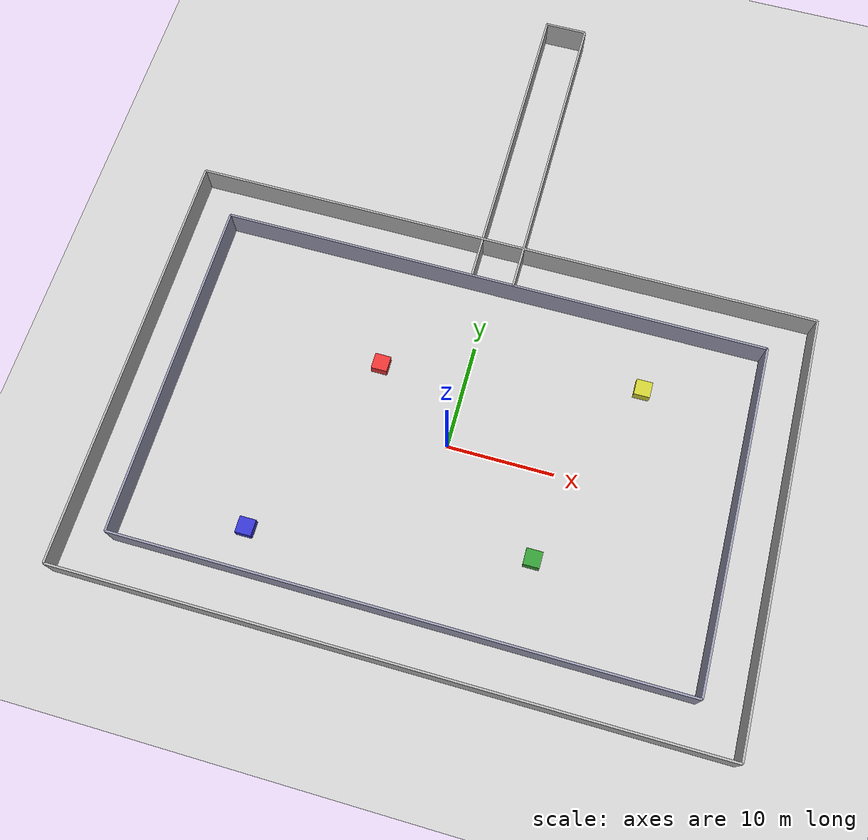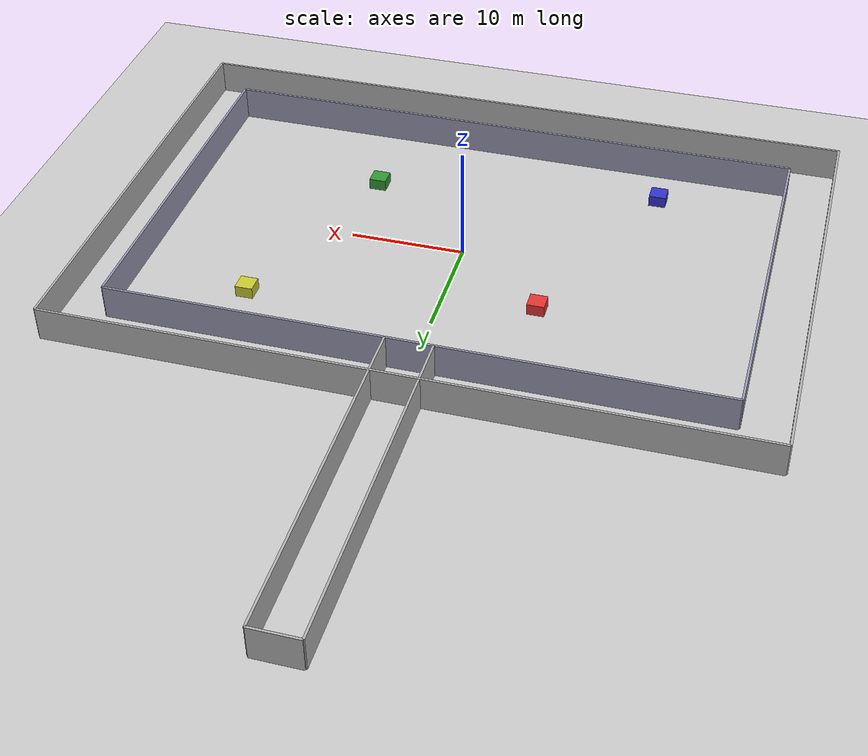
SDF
<sdf version='1.6'>
  <world name='default'>
    <light name='sun' type='directional'>
      <cast_shadows>1</cast_shadows>
      <pose frame=''>0 0 20 0 0 0</pose>
      <diffuse>0.9 0.9 0.9 1</diffuse>
      <specular>0.2 0.2 0.2 1</specular>
      <attenuation><range>200</range></attenuation>
      <direction>-0.5 0.1 -0.9</direction>
    </light>

    <model name='ground_plane'>
      <static>1</static>
      <link name='link'>
        <collision name='collision'>
          <geometry><plane><normal>0 0 1</normal><size>200 200</size></plane></geometry>
          <surface><friction><ode><mu>100</mu><mu2>50</mu2></ode></friction></surface>
        </collision>
        <visual name='visual'>
          <geometry><plane><normal>0 0 1</normal><size>200 200</size></plane></geometry>
          <material><script><uri>file://media/materials/scripts/gazebo.material</uri><name>Gazebo/Grey</name></script></material>
        </visual>
      </link>
    </model>

    <!-- (comment omitted for ASCII compatibility) -->
    <!-- (comment omitted for ASCII compatibility) -->

    <!-- (comment omitted for ASCII compatibility) -->
    <model name='outer_walls'>
      <static>1</static>
      <link name='bottom'><pose>0 -20 0 0 0 0</pose>
        <collision name='c'><pose>0 0 1.5 0 0 0</pose><geometry><box><size>60 0.2 3</size></box></geometry><surface><contact><ode/></contact></surface></collision>
        <visual name='v'><pose>0 0 1.5 0 0 0</pose><geometry><box><size>60 0.2 3</size></box></geometry>
          <material><ambient>0.7 0.7 0.7 1</ambient></material>
        </visual>
      </link>
      <link name='top'><pose>0 20 0 0 0 0</pose>
        <collision name='c'><pose>0 0 1.5 0 0 0</pose><geometry><box><size>60 0.2 3</size></box></geometry><surface><contact><ode/></contact></surface></collision>
        <visual name='v'><pose>0 0 1.5 0 0 0</pose><geometry><box><size>60 0.2 3</size></box></geometry>
          <material><ambient>0.7 0.7 0.7 1</ambient></material>
        </visual>
      </link>
      <link name='left'><pose>-30 0 0 0 0 0</pose>
        <collision name='c'><pose>0 0 1.5 0 0 0</pose><geometry><box><size>0.2 40 3</size></box></geometry><surface><contact><ode/></contact></surface></collision>
        <visual name='v'><pose>0 0 1.5 0 0 0</pose><geometry><box><size>0.2 40 3</size></box></geometry>
          <material><ambient>0.7 0.7 0.7 1</ambient></material>
        </visual>
      </link>
      <link name='right'><pose>30 0 0 0 0 0</pose>
        <collision name='c'><pose>0 0 1.5 0 0 0</pose><geometry><box><size>0.2 40 3</size></box></geometry><surface><contact><ode/></contact></surface></collision>
        <visual name='v'><pose>0 0 1.5 0 0 0</pose><geometry><box><size>0.2 40 3</size></box></geometry>
          <material><ambient>0.7 0.7 0.7 1</ambient></material>
        </visual>
      </link>
    </model>

    <!-- (comment omitted for ASCII compatibility) -->
    <model name='inner_walls'>
      <static>1</static>
      <link name='bottom'><pose>0 -16 0 0 0 0</pose>
        <collision name='c'><pose>0 0 1.5 0 0 0</pose><geometry><box><size>52 0.2 3</size></box></geometry><surface><contact><ode/></contact></surface></collision>
        <visual name='v'><pose>0 0 1.5 0 0 0</pose><geometry><box><size>52 0.2 3</size></box></geometry>
          <material><ambient>0.6 0.6 0.7 1</ambient></material>
        </visual>
      </link>
      <link name='top'><pose>0 16 0 0 0 0</pose>
        <collision name='c'><pose>0 0 1.5 0 0 0</pose><geometry><box><size>52 0.2 3</size></box></geometry><surface><contact><ode/></contact></surface></collision>
        <visual name='v'><pose>0 0 1.5 0 0 0</pose><geometry><box><size>52 0.2 3</size></box></geometry>
          <material><ambient>0.6 0.6 0.7 1</ambient></material>
        </visual>
      </link>
      <link name='left'><pose>-26 0 0 0 0 0</pose>
        <collision name='c'><pose>0 0 1.5 0 0 0</pose><geometry><box><size>0.2 32 3</size></box></geometry><surface><contact><ode/></contact></surface></collision>
        <visual name='v'><pose>0 0 1.5 0 0 0</pose><geometry><box><size>0.2 32 3</size></box></geometry>
          <material><ambient>0.6 0.6 0.7 1</ambient></material>
        </visual>
      </link>
      <link name='right'><pose>26 0 0 0 0 0</pose>
        <collision name='c'><pose>0 0 1.5 0 0 0</pose><geometry><box><size>0.2 32 3</size></box></geometry><surface><contact><ode/></contact></surface></collision>
        <visual name='v'><pose>0 0 1.5 0 0 0</pose><geometry><box><size>0.2 32 3</size></box></geometry>
          <material><ambient>0.6 0.6 0.7 1</ambient></material>
        </visual>
      </link>
    </model>

    <!-- (comment omitted for ASCII compatibility) -->
    <model name='ext_corridor'>
      <static>1</static>
      <link name='left'><pose>-2 31 0 0 0 0</pose>
        <collision name='c'><pose>0 0 1.5 0 0 0</pose><geometry><box><size>0.2 30 3</size></box></geometry><surface><contact><ode/></contact></surface></collision>
        <visual name='v'><pose>0 0 1.5 0 0 0</pose><geometry><box><size>0.2 30 3</size></box></geometry>
          <material><ambient>0.7 0.7 0.7 1</ambient></material>
        </visual>
      </link>
      <link name='right'><pose>2 31 0 0 0 0</pose>
        <collision name='c'><pose>0 0 1.5 0 0 0</pose><geometry><box><size>0.2 30 3</size></box></geometry><surface><contact><ode/></contact></surface></collision>
        <visual name='v'><pose>0 0 1.5 0 0 0</pose><geometry><box><size>0.2 30 3</size></box></geometry>
          <material><ambient>0.7 0.7 0.7 1</ambient></material>
        </visual>
      </link>
    </model>
    <model name='ext_end'><static>1</static>
      <link name='link'><pose>0 46 0 0 0 0</pose>
        <collision name='c'><pose>0 0 1.5 0 0 0</pose><geometry><box><size>4 0.2 3</size></box></geometry><surface><contact><ode/></contact></surface></collision>
        <visual name='v'><pose>0 0 1.5 0 0 0</pose><geometry><box><size>4 0.2 3</size></box></geometry>
          <material><ambient>0.7 0.7 0.7 1</ambient></material>
        </visual>
      </link>
    </model>

    <!-- (comment omitted for ASCII compatibility) -->
    <model name='block_1'><static>1</static>
      <pose>-8 6 0 0 0 0</pose>
      <link name='l'><pose>0 0 0.5 0 0 0</pose>
        <visual name='v'><geometry><box><size>1.5 1.5 1</size></box></geometry>
          <material><ambient>0.9 0.2 0.2 1</ambient></material>
        </visual>
      </link>
    </model>
    <model name='block_2'><static>1</static>
      <pose>10 -8 0 0 0 0</pose>
      <link name='l'><pose>0 0 0.5 0 0 0</pose>
        <visual name='v'><geometry><box><size>1.5 1.5 1</size></box></geometry>
          <material><ambient>0.2 0.6 0.2 1</ambient></material>
        </visual>
      </link>
    </model>
    <model name='block_3'><static>1</static>
      <pose>-15 -12 0 0 0 0</pose>
      <link name='l'><pose>0 0 0.5 0 0 0</pose>
        <visual name='v'><geometry><box><size>1.5 1.5 1</size></box></geometry>
          <material><ambient>0.2 0.2 0.8 1</ambient></material>
        </visual>
      </link>
    </model>
    <model name='block_4'><static>1</static>
      <pose>16 10 0 0 0 0</pose>
      <link name='l'><pose>0 0 0.5 0 0 0</pose>
        <visual name='v'><geometry><box><size>1.5 1.5 1</size></box></geometry>
          <material><ambient>0.8 0.8 0.2 1</ambient></material>
        </visual>
      </link>
    </model>

    <gui fullscreen='0'>
      <camera name='user_camera'>
        <pose>0 -35 30 0 0.92 1.5708</pose>
        <view_controller>orbit</view_controller>
      </camera>
    </gui>
  </world>
</sdf>
